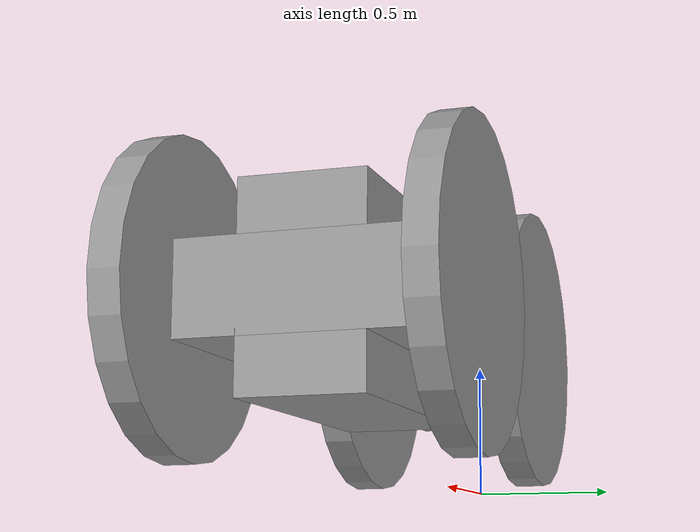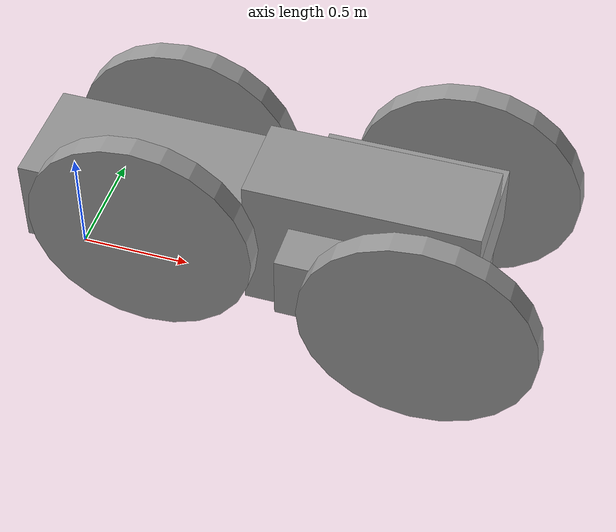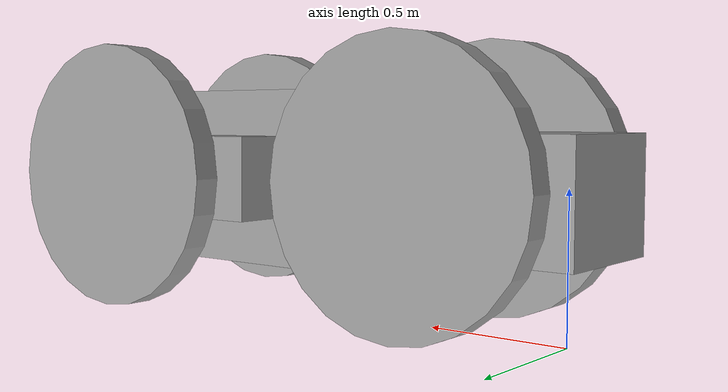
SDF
<?xml version='1.0'?>
<sdf version='1.7'>
  <model name='four_wheel'>
    <link name='link_0'>
      <inertial>
        <mass>1</mass>
        <inertia>
          <ixx>0.145833</ixx>
          <ixy>0</ixy>
          <ixz>0</ixz>
          <iyy>0.145833</iyy>
          <iyz>0</iyz>
          <izz>0.125</izz>
        </inertia>
        <pose>0 0 0 0 -0 0</pose>
      </inertial>
      <pose>0.440435 -0.31778 0.500673 1.573 -0 0</pose>
      <gravity>1</gravity>
      <self_collide>0</self_collide>
      <kinematic>0</kinematic>
      <enable_wind>0</enable_wind>
      <visual name='visual'>
        <pose>0 0 0 0 -0 0</pose>
        <geometry>
          <cylinder>
            <radius>0.5</radius>
            <length>0.1</length>
          </cylinder>
        </geometry>
        <material>
          <lighting>1</lighting>
          <script>
            <uri>file://media/materials/scripts/gazebo.material</uri>
            <name>Gazebo/Grey</name>
          </script>
          <shader type='pixel'>
            <normal_map>__default__</normal_map>
          </shader>
          <ambient>0.3 0.3 0.3 1</ambient>
          <diffuse>0.7 0.7 0.7 1</diffuse>
          <specular>0.01 0.01 0.01 1</specular>
          <emissive>0 0 0 1</emissive>
        </material>
        <transparency>0</transparency>
        <cast_shadows>1</cast_shadows>
      </visual>
      <collision name='collision'>
        <laser_retro>0</laser_retro>
        <max_contacts>10</max_contacts>
        <pose>0 0 0 0 -0 0</pose>
        <geometry>
          <cylinder>
            <radius>0.5</radius>
            <length>0.1</length>
          </cylinder>
        </geometry>
        <surface>
          <friction>
            <ode>
              <mu>1</mu>
              <mu2>1</mu2>
              <fdir1>0 0 0</fdir1>
              <slip1>0</slip1>
              <slip2>0</slip2>
            </ode>
            <torsional>
              <coefficient>1</coefficient>
              <patch_radius>0</patch_radius>
              <surface_radius>0</surface_radius>
              <use_patch_radius>1</use_patch_radius>
              <ode>
                <slip>0</slip>
              </ode>
            </torsional>
          </friction>
          <bounce>
            <restitution_coefficient>0</restitution_coefficient>
            <threshold>1e+06</threshold>
          </bounce>
          <contact>
            <collide_without_contact>0</collide_without_contact>
            <collide_without_contact_bitmask>1</collide_without_contact_bitmask>
            <collide_bitmask>1</collide_bitmask>
            <ode>
              <soft_cfm>0</soft_cfm>
              <soft_erp>0.2</soft_erp>
              <kp>1e+13</kp>
              <kd>1</kd>
              <max_vel>0.01</max_vel>
              <min_depth>0</min_depth>
            </ode>
            <bullet>
              <split_impulse>1</split_impulse>
              <split_impulse_penetration_threshold>-0.01</split_impulse_penetration_threshold>
              <soft_cfm>0</soft_cfm>
              <soft_erp>0.2</soft_erp>
              <kp>1e+13</kp>
              <kd>1</kd>
            </bullet>
          </contact>
        </surface>
      </collision>
    </link>
    <link name='link_0_0'>
      <inertial>
        <mass>1</mass>
        <inertia>
          <ixx>0.166667</ixx>
          <ixy>0</ixy>
          <ixz>0</ixz>
          <iyy>0.166667</iyy>
          <iyz>0</iyz>
          <izz>0.166667</izz>
        </inertia>
        <pose>0 0 0 0 -0 0</pose>
      </inertial>
      <pose>0.368392 -0.017144 0.472894 0.002202 1.1e-05 -0.000997</pose>
      <gravity>1</gravity>
      <self_collide>0</self_collide>
      <kinematic>0</kinematic>
      <enable_wind>0</enable_wind>
      <visual name='visual'>
        <pose>0 0 0 0 -0 0</pose>
        <geometry>
          <box>
            <size>1 0.5 0.4</size>
          </box>
        </geometry>
        <material>
          <lighting>1</lighting>
          <script>
            <uri>file://media/materials/scripts/gazebo.material</uri>
            <name>Gazebo/Grey</name>
          </script>
          <shader type='pixel'>
            <normal_map>__default__</normal_map>
          </shader>
          <ambient>0.3 0.3 0.3 1</ambient>
          <diffuse>0.7 0.7 0.7 1</diffuse>
          <specular>0.01 0.01 0.01 1</specular>
          <emissive>0 0 0 1</emissive>
        </material>
        <transparency>0</transparency>
        <cast_shadows>1</cast_shadows>
      </visual>
      <collision name='collision'>
        <laser_retro>0</laser_retro>
        <max_contacts>10</max_contacts>
        <pose>0 0 0 0 -0 0</pose>
        <geometry>
          <box>
            <size>1 0.5 0.4</size>
          </box>
        </geometry>
        <surface>
          <friction>
            <ode>
              <mu>1</mu>
              <mu2>1</mu2>
              <fdir1>0 0 0</fdir1>
              <slip1>0</slip1>
              <slip2>0</slip2>
            </ode>
            <torsional>
              <coefficient>1</coefficient>
              <patch_radius>0</patch_radius>
              <surface_radius>0</surface_radius>
              <use_patch_radius>1</use_patch_radius>
              <ode>
                <slip>0</slip>
              </ode>
            </torsional>
          </friction>
          <bounce>
            <restitution_coefficient>0</restitution_coefficient>
            <threshold>1e+06</threshold>
          </bounce>
          <contact>
            <collide_without_contact>0</collide_without_contact>
            <collide_without_contact_bitmask>1</collide_without_contact_bitmask>
            <collide_bitmask>1</collide_bitmask>
            <ode>
              <soft_cfm>0</soft_cfm>
              <soft_erp>0.2</soft_erp>
              <kp>1e+13</kp>
              <kd>1</kd>
              <max_vel>0.01</max_vel>
              <min_depth>0</min_depth>
            </ode>
            <bullet>
              <split_impulse>1</split_impulse>
              <split_impulse_penetration_threshold>-0.01</split_impulse_penetration_threshold>
              <soft_cfm>0</soft_cfm>
              <soft_erp>0.2</soft_erp>
              <kp>1e+13</kp>
              <kd>1</kd>
            </bullet>
          </contact>
        </surface>
      </collision>
    </link>
    <link name='link_0_clone'>
      <inertial>
        <mass>1</mass>
        <inertia>
          <ixx>0.145833</ixx>
          <ixy>0</ixy>
          <ixz>0</ixz>
          <iyy>0.145833</iyy>
          <iyz>0</iyz>
          <izz>0.125</izz>
        </inertia>
        <pose>0 0 0 0 -0 0</pose>
      </inertial>
      <pose>1.69051 -0.502993 0.500152 1.573 -0 0</pose>
      <gravity>1</gravity>
      <self_collide>0</self_collide>
      <kinematic>0</kinematic>
      <enable_wind>0</enable_wind>
      <visual name='visual'>
        <pose>0 0 0 0 -0 0</pose>
        <geometry>
          <cylinder>
            <radius>0.5</radius>
            <length>0.1</length>
          </cylinder>
        </geometry>
        <material>
          <lighting>1</lighting>
          <script>
            <uri>file://media/materials/scripts/gazebo.material</uri>
            <name>Gazebo/Grey</name>
          </script>
          <shader type='pixel'>
            <normal_map>__default__</normal_map>
          </shader>
          <ambient>0.3 0.3 0.3 1</ambient>
          <diffuse>0.7 0.7 0.7 1</diffuse>
          <specular>0.01 0.01 0.01 1</specular>
          <emissive>0 0 0 1</emissive>
        </material>
        <transparency>0</transparency>
        <cast_shadows>1</cast_shadows>
      </visual>
      <collision name='collision'>
        <laser_retro>0</laser_retro>
        <max_contacts>10</max_contacts>
        <pose>0 0 0 0 -0 0</pose>
        <geometry>
          <cylinder>
            <radius>0.5</radius>
            <length>0.1</length>
          </cylinder>
        </geometry>
        <surface>
          <friction>
            <ode>
              <mu>1</mu>
              <mu2>1</mu2>
              <fdir1>0 0 0</fdir1>
              <slip1>0</slip1>
              <slip2>0</slip2>
            </ode>
            <torsional>
              <coefficient>1</coefficient>
              <patch_radius>0</patch_radius>
              <surface_radius>0</surface_radius>
              <use_patch_radius>1</use_patch_radius>
              <ode>
                <slip>0</slip>
              </ode>
            </torsional>
          </friction>
          <bounce>
            <restitution_coefficient>0</restitution_coefficient>
            <threshold>1e+06</threshold>
          </bounce>
          <contact>
            <collide_without_contact>0</collide_without_contact>
            <collide_without_contact_bitmask>1</collide_without_contact_bitmask>
            <collide_bitmask>1</collide_bitmask>
            <ode>
              <soft_cfm>0</soft_cfm>
              <soft_erp>0.2</soft_erp>
              <kp>1e+13</kp>
              <kd>1</kd>
              <max_vel>0.01</max_vel>
              <min_depth>0</min_depth>
            </ode>
            <bullet>
              <split_impulse>1</split_impulse>
              <split_impulse_penetration_threshold>-0.01</split_impulse_penetration_threshold>
              <soft_cfm>0</soft_cfm>
              <soft_erp>0.2</soft_erp>
              <kp>1e+13</kp>
              <kd>1</kd>
            </bullet>
          </contact>
        </surface>
      </collision>
    </link>
    <link name='link_0_clone_clone'>
      <inertial>
        <mass>1</mass>
        <inertia>
          <ixx>0.145833</ixx>
          <ixy>0</ixy>
          <ixz>0</ixz>
          <iyy>0.145833</iyy>
          <iyz>0</iyz>
          <izz>0.125</izz>
        </inertia>
        <pose>0 0 0 0 -0 0</pose>
      </inertial>
      <pose>1.69031 0.398011 0.499709 1.573 -0 0</pose>
      <gravity>1</gravity>
      <self_collide>0</self_collide>
      <kinematic>0</kinematic>
      <enable_wind>0</enable_wind>
      <visual name='visual'>
        <pose>0 0 0 0 -0 0</pose>
        <geometry>
          <cylinder>
            <radius>0.5</radius>
            <length>0.1</length>
          </cylinder>
        </geometry>
        <material>
          <lighting>1</lighting>
          <script>
            <uri>file://media/materials/scripts/gazebo.material</uri>
            <name>Gazebo/Grey</name>
          </script>
          <shader type='pixel'>
            <normal_map>__default__</normal_map>
          </shader>
          <ambient>0.3 0.3 0.3 1</ambient>
          <diffuse>0.7 0.7 0.7 1</diffuse>
          <specular>0.01 0.01 0.01 1</specular>
          <emissive>0 0 0 1</emissive>
        </material>
        <transparency>0</transparency>
        <cast_shadows>1</cast_shadows>
      </visual>
      <collision name='collision'>
        <laser_retro>0</laser_retro>
        <max_contacts>10</max_contacts>
        <pose>0 0 0 0 -0 0</pose>
        <geometry>
          <cylinder>
            <radius>0.5</radius>
            <length>0.1</length>
          </cylinder>
        </geometry>
        <surface>
          <friction>
            <ode>
              <mu>1</mu>
              <mu2>1</mu2>
              <fdir1>0 0 0</fdir1>
              <slip1>0</slip1>
              <slip2>0</slip2>
            </ode>
            <torsional>
              <coefficient>1</coefficient>
              <patch_radius>0</patch_radius>
              <surface_radius>0</surface_radius>
              <use_patch_radius>1</use_patch_radius>
              <ode>
                <slip>0</slip>
              </ode>
            </torsional>
          </friction>
          <bounce>
            <restitution_coefficient>0</restitution_coefficient>
            <threshold>1e+06</threshold>
          </bounce>
          <contact>
            <collide_without_contact>0</collide_without_contact>
            <collide_without_contact_bitmask>1</collide_without_contact_bitmask>
            <collide_bitmask>1</collide_bitmask>
            <ode>
              <soft_cfm>0</soft_cfm>
              <soft_erp>0.2</soft_erp>
              <kp>1e+13</kp>
              <kd>1</kd>
              <max_vel>0.01</max_vel>
              <min_depth>0</min_depth>
            </ode>
            <bullet>
              <split_impulse>1</split_impulse>
              <split_impulse_penetration_threshold>-0.01</split_impulse_penetration_threshold>
              <soft_cfm>0</soft_cfm>
              <soft_erp>0.2</soft_erp>
              <kp>1e+13</kp>
              <kd>1</kd>
            </bullet>
          </contact>
        </surface>
      </collision>
    </link>
    <link name='link_0_clone_clone_clone'>
      <inertial>
        <mass>1</mass>
        <inertia>
          <ixx>0.145833</ixx>
          <ixy>0</ixy>
          <ixz>0</ixz>
          <iyy>0.145833</iyy>
          <iyz>0</iyz>
          <izz>0.125</izz>
        </inertia>
        <pose>0 0 0 0 -0 0</pose>
      </inertial>
      <pose>0.440504 0.293228 0.499589 1.573 -0 0</pose>
      <gravity>1</gravity>
      <self_collide>0</self_collide>
      <kinematic>0</kinematic>
      <enable_wind>0</enable_wind>
      <visual name='visual'>
        <pose>0 0 0 0 -0 0</pose>
        <geometry>
          <cylinder>
            <radius>0.5</radius>
            <length>0.1</length>
          </cylinder>
        </geometry>
        <material>
          <lighting>1</lighting>
          <script>
            <uri>file://media/materials/scripts/gazebo.material</uri>
            <name>Gazebo/Grey</name>
          </script>
          <shader type='pixel'>
            <normal_map>__default__</normal_map>
          </shader>
          <ambient>0.3 0.3 0.3 1</ambient>
          <diffuse>0.7 0.7 0.7 1</diffuse>
          <specular>0.01 0.01 0.01 1</specular>
          <emissive>0 0 0 1</emissive>
        </material>
        <transparency>0</transparency>
        <cast_shadows>1</cast_shadows>
      </visual>
      <collision name='collision'>
        <laser_retro>0</laser_retro>
        <max_contacts>10</max_contacts>
        <pose>0 0 0 0 -0 0</pose>
        <geometry>
          <cylinder>
            <radius>0.5</radius>
            <length>0.1</length>
          </cylinder>
        </geometry>
        <surface>
          <friction>
            <ode>
              <mu>1</mu>
              <mu2>1</mu2>
              <fdir1>0 0 0</fdir1>
              <slip1>0</slip1>
              <slip2>0</slip2>
            </ode>
            <torsional>
              <coefficient>1</coefficient>
              <patch_radius>0</patch_radius>
              <surface_radius>0</surface_radius>
              <use_patch_radius>1</use_patch_radius>
              <ode>
                <slip>0</slip>
              </ode>
            </torsional>
          </friction>
          <bounce>
            <restitution_coefficient>0</restitution_coefficient>
            <threshold>1e+06</threshold>
          </bounce>
          <contact>
            <collide_without_contact>0</collide_without_contact>
            <collide_without_contact_bitmask>1</collide_without_contact_bitmask>
            <collide_bitmask>1</collide_bitmask>
            <ode>
              <soft_cfm>0</soft_cfm>
              <soft_erp>0.2</soft_erp>
              <kp>1e+13</kp>
              <kd>1</kd>
              <max_vel>0.01</max_vel>
              <min_depth>0</min_depth>
            </ode>
            <bullet>
              <split_impulse>1</split_impulse>
              <split_impulse_penetration_threshold>-0.01</split_impulse_penetration_threshold>
              <soft_cfm>0</soft_cfm>
              <soft_erp>0.2</soft_erp>
              <kp>1e+13</kp>
              <kd>1</kd>
            </bullet>
          </contact>
        </surface>
      </collision>
    </link>
    <link name='link_1'>
      <inertial>
        <mass>1</mass>
        <inertia>
          <ixx>0.166667</ixx>
          <ixy>0</ixy>
          <ixz>0</ixz>
          <iyy>0.166667</iyy>
          <iyz>0</iyz>
          <izz>0.166667</izz>
        </inertia>
        <pose>0 0 0 0 -0 0</pose>
      </inertial>
      <pose>1.46884 -0.052273 0.50125 0.002202 1.1e-05 -0.000997</pose>
      <gravity>1</gravity>
      <self_collide>0</self_collide>
      <kinematic>0</kinematic>
      <enable_wind>0</enable_wind>
      <visual name='visual'>
        <pose>0 0 0 0 -0 0</pose>
        <geometry>
          <box>
            <size>0.8 0.8 0.3</size>
          </box>
        </geometry>
        <material>
          <lighting>1</lighting>
          <script>
            <uri>file://media/materials/scripts/gazebo.material</uri>
            <name>Gazebo/Grey</name>
          </script>
          <shader type='pixel'>
            <normal_map>__default__</normal_map>
          </shader>
          <ambient>0.3 0.3 0.3 1</ambient>
          <diffuse>0.7 0.7 0.7 1</diffuse>
          <specular>0.01 0.01 0.01 1</specular>
          <emissive>0 0 0 1</emissive>
        </material>
        <transparency>0</transparency>
        <cast_shadows>1</cast_shadows>
      </visual>
      <collision name='collision'>
        <laser_retro>0</laser_retro>
        <max_contacts>10</max_contacts>
        <pose>0 0 0 0 -0 0</pose>
        <geometry>
          <box>
            <size>0.8 0.8 0.3</size>
          </box>
        </geometry>
        <surface>
          <friction>
            <ode>
              <mu>1</mu>
              <mu2>1</mu2>
              <fdir1>0 0 0</fdir1>
              <slip1>0</slip1>
              <slip2>0</slip2>
            </ode>
            <torsional>
              <coefficient>1</coefficient>
              <patch_radius>0</patch_radius>
              <surface_radius>0</surface_radius>
              <use_patch_radius>1</use_patch_radius>
              <ode>
                <slip>0</slip>
              </ode>
            </torsional>
          </friction>
          <bounce>
            <restitution_coefficient>0</restitution_coefficient>
            <threshold>1e+06</threshold>
          </bounce>
          <contact>
            <collide_without_contact>0</collide_without_contact>
            <collide_without_contact_bitmask>1</collide_without_contact_bitmask>
            <collide_bitmask>1</collide_bitmask>
            <ode>
              <soft_cfm>0</soft_cfm>
              <soft_erp>0.2</soft_erp>
              <kp>1e+13</kp>
              <kd>1</kd>
              <max_vel>0.01</max_vel>
              <min_depth>0</min_depth>
            </ode>
            <bullet>
              <split_impulse>1</split_impulse>
              <split_impulse_penetration_threshold>-0.01</split_impulse_penetration_threshold>
              <soft_cfm>0</soft_cfm>
              <soft_erp>0.2</soft_erp>
              <kp>1e+13</kp>
              <kd>1</kd>
            </bullet>
          </contact>
        </surface>
      </collision>
    </link>
    <link name='link_3'>
      <inertial>
        <mass>0.650603</mass>
        <inertia>
          <ixx>0.0771659</ixx>
          <ixy>0</ixy>
          <ixz>0</ixz>
          <iyy>0.0771659</iyy>
          <iyz>0</iyz>
          <izz>0.108434</izz>
        </inertia>
        <pose>0 0 0 0 -0 0</pose>
      </inertial>
      <pose>1.36864 -0.052163 0.496537 0 -0 0</pose>
      <self_collide>0</self_collide>
      <enable_wind>0</enable_wind>
      <kinematic>0</kinematic>
      <gravity>1</gravity>
      <visual name='visual'>
        <pose>0 0 0 0 -0 0</pose>
        <geometry>
          <box>
            <size>1 0.4 0.650601</size>
          </box>
        </geometry>
        <material>
          <lighting>1</lighting>
          <script>
            <uri>file://media/materials/scripts/gazebo.material</uri>
            <name>Gazebo/Grey</name>
          </script>
          <shader type='pixel'>
            <normal_map>__default__</normal_map>
          </shader>
          <emissive>0 0 0 1</emissive>
          <ambient>0.3 0.3 0.3 1</ambient>
          <diffuse>0.7 0.7 0.7 1</diffuse>
          <specular>0.01 0.01 0.01 1</specular>
        </material>
        <transparency>0</transparency>
        <cast_shadows>1</cast_shadows>
      </visual>
      <collision name='collision'>
        <laser_retro>0</laser_retro>
        <max_contacts>10</max_contacts>
        <pose>0 0 0 0 -0 0</pose>
        <geometry>
          <box>
            <size>1 0.4 0.650601</size>
          </box>
        </geometry>
        <surface>
          <friction>
            <ode>
              <mu>1</mu>
              <mu2>1</mu2>
              <fdir1>0 0 0</fdir1>
              <slip1>0</slip1>
              <slip2>0</slip2>
            </ode>
            <torsional>
              <coefficient>1</coefficient>
              <patch_radius>0</patch_radius>
              <surface_radius>0</surface_radius>
              <use_patch_radius>1</use_patch_radius>
              <ode>
                <slip>0</slip>
              </ode>
            </torsional>
          </friction>
          <bounce>
            <restitution_coefficient>0</restitution_coefficient>
            <threshold>1e+06</threshold>
          </bounce>
          <contact>
            <collide_without_contact>0</collide_without_contact>
            <collide_without_contact_bitmask>1</collide_without_contact_bitmask>
            <collide_bitmask>1</collide_bitmask>
            <ode>
              <soft_cfm>0</soft_cfm>
              <soft_erp>0.2</soft_erp>
              <kp>1e+13</kp>
              <kd>1</kd>
              <max_vel>0.01</max_vel>
              <min_depth>0</min_depth>
            </ode>
            <bullet>
              <split_impulse>1</split_impulse>
              <split_impulse_penetration_threshold>-0.01</split_impulse_penetration_threshold>
              <soft_cfm>0</soft_cfm>
              <soft_erp>0.2</soft_erp>
              <kp>1e+13</kp>
              <kd>1</kd>
            </bullet>
          </contact>
        </surface>
      </collision>
    </link>
    <joint name='link_0_0_JOINT_3' type='fixed'>
      <parent>link_0_0</parent>
      <child>link_3</child>
      <pose>0 0 0 0 -0 0</pose>
      <physics>
        <ode>
          <limit>
            <cfm>0</cfm>
            <erp>0.2</erp>
          </limit>
          <suspension>
            <cfm>0</cfm>
            <erp>0.2</erp>
          </suspension>
        </ode>
      </physics>
    </joint>
    <joint name='link_0_0_JOINT_7' type='revolute'>
      <parent>link_0_0</parent>
      <child>link_0</child>
      <pose>0 0 0 0 -0 0</pose>
      <axis>
        <xyz>0 0 1</xyz>
        <limit>
          <lower>-1.79769e+308</lower>
          <upper>1.79769e+308</upper>
          <effort>-1</effort>
          <velocity>-1</velocity>
        </limit>
        <dynamics>
          <spring_reference>0</spring_reference>
          <spring_stiffness>0</spring_stiffness>
          <damping>0</damping>
          <friction>0</friction>
        </dynamics>
      </axis>
      <physics>
        <ode>
          <limit>
            <cfm>0</cfm>
            <erp>0.2</erp>
          </limit>
          <suspension>
            <cfm>0</cfm>
            <erp>0.2</erp>
          </suspension>
        </ode>
      </physics>
    </joint>
    <joint name='link_0_0_JOINT_9' type='revolute'>
      <parent>link_0_0</parent>
      <child>link_0_clone_clone_clone</child>
      <pose>0 0 0 0 -0 0</pose>
      <axis>
        <xyz>0 0 1</xyz>
        <limit>
          <lower>-1.79769e+308</lower>
          <upper>1.79769e+308</upper>
          <effort>-1</effort>
          <velocity>-1</velocity>
        </limit>
        <dynamics>
          <spring_reference>0</spring_reference>
          <spring_stiffness>0</spring_stiffness>
          <damping>0</damping>
          <friction>0</friction>
        </dynamics>
      </axis>
      <physics>
        <ode>
          <limit>
            <cfm>0</cfm>
            <erp>0.2</erp>
          </limit>
          <suspension>
            <cfm>0</cfm>
            <erp>0.2</erp>
          </suspension>
        </ode>
      </physics>
    </joint>
    <joint name='link_1_JOINT_5' type='revolute'>
      <parent>link_1</parent>
      <child>link_0_clone_clone</child>
      <pose>0 0 0 0 -0 0</pose>
      <axis>
        <xyz>0 0 1</xyz>
        <limit>
          <lower>-1.79769e+308</lower>
          <upper>1.79769e+308</upper>
          <effort>-1</effort>
          <velocity>-1</velocity>
        </limit>
        <dynamics>
          <spring_reference>0</spring_reference>
          <spring_stiffness>0</spring_stiffness>
          <damping>0</damping>
          <friction>0</friction>
        </dynamics>
      </axis>
      <physics>
        <ode>
          <limit>
            <cfm>0</cfm>
            <erp>0.2</erp>
          </limit>
          <suspension>
            <cfm>0</cfm>
            <erp>0.2</erp>
          </suspension>
        </ode>
      </physics>
    </joint>
    <joint name='link_1_JOINT_6' type='revolute'>
      <parent>link_1</parent>
      <child>link_0_clone</child>
      <pose>0 0 0 0 -0 0</pose>
      <axis>
        <xyz>0 0 1</xyz>
        <limit>
          <lower>-1.79769e+308</lower>
          <upper>1.79769e+308</upper>
          <effort>-1</effort>
          <velocity>-1</velocity>
        </limit>
        <dynamics>
          <spring_reference>0</spring_reference>
          <spring_stiffness>0</spring_stiffness>
          <damping>0</damping>
          <friction>0</friction>
        </dynamics>
      </axis>
      <physics>
        <ode>
          <limit>
            <cfm>0</cfm>
            <erp>0.2</erp>
          </limit>
          <suspension>
            <cfm>0</cfm>
            <erp>0.2</erp>
          </suspension>
        </ode>
      </physics>
    </joint>
    <joint name='link_3_JOINT_4' type='fixed'>
      <parent>link_3</parent>
      <child>link_1</child>
      <pose>0 0 0 0 -0 0</pose>
      <physics>
        <ode>
          <limit>
            <cfm>0</cfm>
            <erp>0.2</erp>
          </limit>
          <suspension>
            <cfm>0</cfm>
            <erp>0.2</erp>
          </suspension>
        </ode>
      </physics>
    </joint>
    <static>0</static>
    <allow_auto_disable>1</allow_auto_disable>
  </model>
</sdf>
